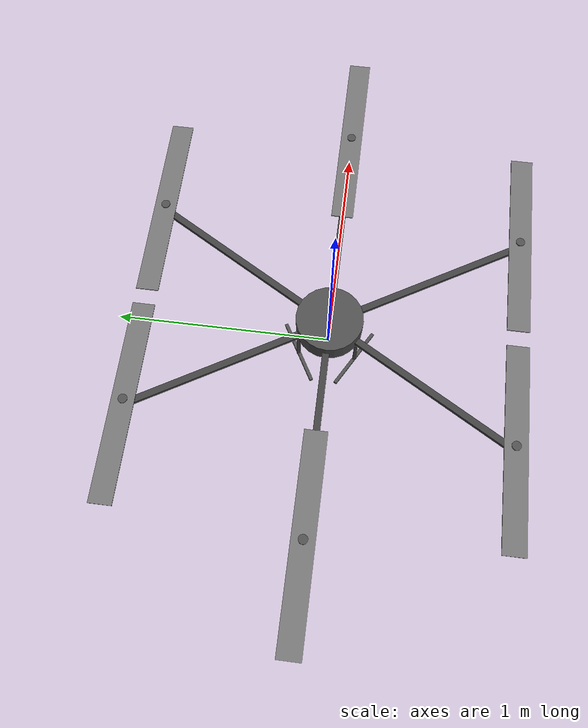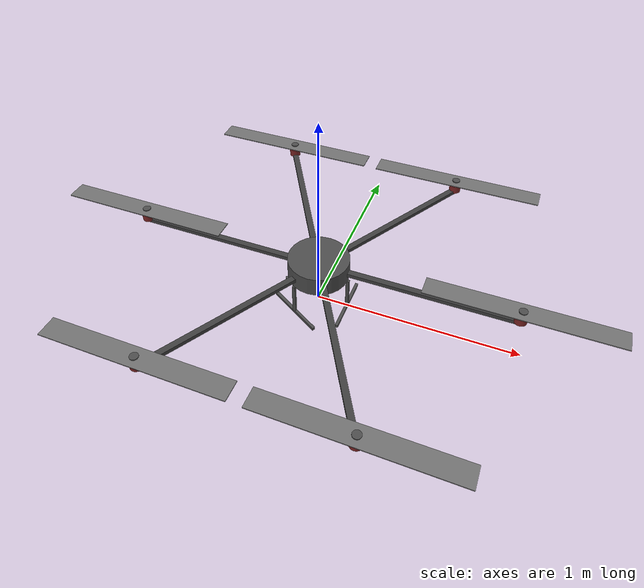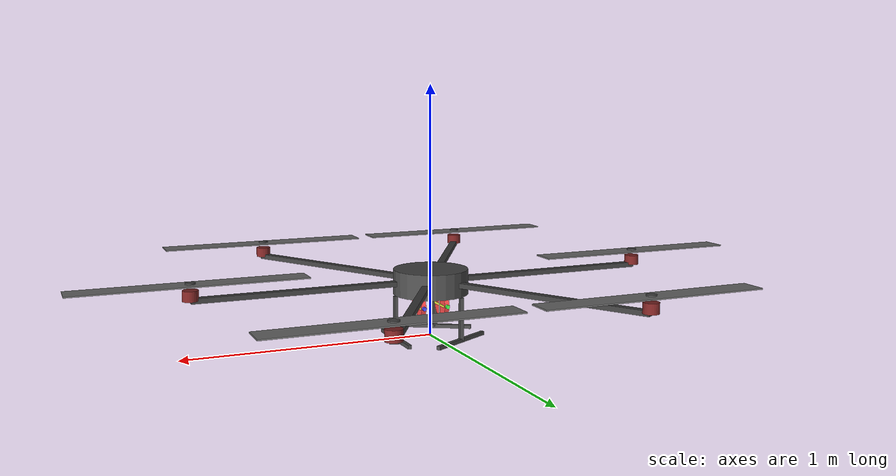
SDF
<?xml version="1.0" encoding="UTF-8"?>
<sdf version='1.9'>
  <model name='mars_hexacopter_base'>
    <pose>0 0 0.22 0 0 0</pose>
    <self_collide>false</self_collide>
    <static>false</static>

    <!-- base_link: hub + arms + motors + landing gear -->
    <link name="base_link">
      <inertial>
        <!-- 4.670 - 0.30 (2x CMG: 2×0.05 gimbal + 2×0.1 wheel) = 4.370 -->
        <mass>4.370</mass>
        <inertia>
          <ixx>0.39558</ixx>
          <ixy>0</ixy>
          <ixz>0</ixz>
          <iyy>0.39558</iyy>
          <iyz>0</iyz>
          <izz>0.78650</izz>
        </inertia>
      </inertial>
      <gravity>true</gravity>
      <velocity_decay/>

      <!-- Central hub (cylinder r=0.15, h=0.10) -->
      <visual name="hub_visual">
        <pose>0 0 0 0 0 0</pose>
        <geometry>
          <cylinder>
            <radius>0.15</radius>
            <length>0.10</length>
          </cylinder>
        </geometry>
        <material>
          <ambient>0.2 0.2 0.2 1</ambient>
          <diffuse>0.3 0.3 0.3 1</diffuse>
        </material>
      </visual>

      <!-- Arm 0: 0° -->
      <visual name="arm_0_visual">
        <pose>0.55 0 0 0 0 0</pose>
        <geometry>
          <box><size>0.80 0.03 0.02</size></box>
        </geometry>
        <material>
          <ambient>0.15 0.15 0.15 1</ambient>
          <diffuse>0.25 0.25 0.25 1</diffuse>
        </material>
      </visual>

      <!-- Arm 1: 60° -->
      <visual name="arm_1_visual">
        <pose>0.275 0.47631 0 0 0 1.0472</pose>
        <geometry>
          <box><size>0.80 0.03 0.02</size></box>
        </geometry>
        <material>
          <ambient>0.15 0.15 0.15 1</ambient>
          <diffuse>0.25 0.25 0.25 1</diffuse>
        </material>
      </visual>

      <!-- Arm 2: 120° -->
      <visual name="arm_2_visual">
        <pose>-0.275 0.47631 0 0 0 2.0944</pose>
        <geometry>
          <box><size>0.80 0.03 0.02</size></box>
        </geometry>
        <material>
          <ambient>0.15 0.15 0.15 1</ambient>
          <diffuse>0.25 0.25 0.25 1</diffuse>
        </material>
      </visual>

      <!-- Arm 3: 180° -->
      <visual name="arm_3_visual">
        <pose>-0.55 0 0 0 0 3.1416</pose>
        <geometry>
          <box><size>0.80 0.03 0.02</size></box>
        </geometry>
        <material>
          <ambient>0.15 0.15 0.15 1</ambient>
          <diffuse>0.25 0.25 0.25 1</diffuse>
        </material>
      </visual>

      <!-- Arm 4: 240° -->
      <visual name="arm_4_visual">
        <pose>-0.275 -0.47631 0 0 0 4.1888</pose>
        <geometry>
          <box><size>0.80 0.03 0.02</size></box>
        </geometry>
        <material>
          <ambient>0.15 0.15 0.15 1</ambient>
          <diffuse>0.25 0.25 0.25 1</diffuse>
        </material>
      </visual>

      <!-- Arm 5: 300° -->
      <visual name="arm_5_visual">
        <pose>0.275 -0.47631 0 0 0 5.2360</pose>
        <geometry>
          <box><size>0.80 0.03 0.02</size></box>
        </geometry>
        <material>
          <ambient>0.15 0.15 0.15 1</ambient>
          <diffuse>0.25 0.25 0.25 1</diffuse>
        </material>
      </visual>

      <!-- Motor pods (small cylinders at arm tips) -->
      <visual name="motor_pod_0">
        <pose>0.95 0 0.02 0 0 0</pose>
        <geometry><cylinder><radius>0.03</radius><length>0.04</length></cylinder></geometry>
        <material><ambient>0.3 0.1 0.1 1</ambient><diffuse>0.5 0.15 0.15 1</diffuse></material>
      </visual>
      <visual name="motor_pod_1">
        <pose>0.475 0.82272 0.02 0 0 0</pose>
        <geometry><cylinder><radius>0.03</radius><length>0.04</length></cylinder></geometry>
        <material><ambient>0.3 0.1 0.1 1</ambient><diffuse>0.5 0.15 0.15 1</diffuse></material>
      </visual>
      <visual name="motor_pod_2">
        <pose>-0.475 0.82272 0.02 0 0 0</pose>
        <geometry><cylinder><radius>0.03</radius><length>0.04</length></cylinder></geometry>
        <material><ambient>0.3 0.1 0.1 1</ambient><diffuse>0.5 0.15 0.15 1</diffuse></material>
      </visual>
      <visual name="motor_pod_3">
        <pose>-0.95 0 0.02 0 0 0</pose>
        <geometry><cylinder><radius>0.03</radius><length>0.04</length></cylinder></geometry>
        <material><ambient>0.3 0.1 0.1 1</ambient><diffuse>0.5 0.15 0.15 1</diffuse></material>
      </visual>
      <visual name="motor_pod_4">
        <pose>-0.475 -0.82272 0.02 0 0 0</pose>
        <geometry><cylinder><radius>0.03</radius><length>0.04</length></cylinder></geometry>
        <material><ambient>0.3 0.1 0.1 1</ambient><diffuse>0.5 0.15 0.15 1</diffuse></material>
      </visual>
      <visual name="motor_pod_5">
        <pose>0.475 -0.82272 0.02 0 0 0</pose>
        <geometry><cylinder><radius>0.03</radius><length>0.04</length></cylinder></geometry>
        <material><ambient>0.3 0.1 0.1 1</ambient><diffuse>0.5 0.15 0.15 1</diffuse></material>
      </visual>

      <!-- Landing gear: 3 legs at 0°, 120°, 240° (120° symmetric) -->
      <!-- Leg 0: 0° (x+ direction) -->
      <visual name="leg_0_visual">
        <pose>0.15 0 -0.135 0 0 0</pose>
        <geometry><box><size>0.015 0.015 0.17</size></box></geometry>
        <material><ambient>0.2 0.2 0.2 1</ambient><diffuse>0.3 0.3 0.3 1</diffuse></material>
      </visual>
      <!-- Leg 1: 120° -->
      <visual name="leg_1_visual">
        <pose>-0.075 0.130 -0.135 0 0 0</pose>
        <geometry><box><size>0.015 0.015 0.17</size></box></geometry>
        <material><ambient>0.2 0.2 0.2 1</ambient><diffuse>0.3 0.3 0.3 1</diffuse></material>
      </visual>
      <!-- Leg 2: 240° -->
      <visual name="leg_2_visual">
        <pose>-0.075 -0.130 -0.135 0 0 0</pose>
        <geometry><box><size>0.015 0.015 0.17</size></box></geometry>
        <material><ambient>0.2 0.2 0.2 1</ambient><diffuse>0.3 0.3 0.3 1</diffuse></material>
      </visual>
      <!-- Landing gear feet: 3 bars perpendicular to radial, all same size -->
      <visual name="foot_0">
        <pose>0.15 0 -0.22 0 0 1.5708</pose>
        <geometry><box><size>0.30 0.015 0.015</size></box></geometry>
        <material><ambient>0.2 0.2 0.2 1</ambient><diffuse>0.3 0.3 0.3 1</diffuse></material>
      </visual>
      <visual name="foot_1">
        <pose>-0.075 0.130 -0.22 0 0 0.5236</pose>
        <geometry><box><size>0.30 0.015 0.015</size></box></geometry>
        <material><ambient>0.2 0.2 0.2 1</ambient><diffuse>0.3 0.3 0.3 1</diffuse></material>
      </visual>
      <visual name="foot_2">
        <pose>-0.075 -0.130 -0.22 0 0 -0.5236</pose>
        <geometry><box><size>0.30 0.015 0.015</size></box></geometry>
        <material><ambient>0.2 0.2 0.2 1</ambient><diffuse>0.3 0.3 0.3 1</diffuse></material>
      </visual>

      <!-- Collision: central hub -->
      <collision name="hub_collision">
        <pose>0 0 0 0 0 0</pose>
        <geometry>
          <cylinder>
            <radius>0.15</radius>
            <length>0.10</length>
          </cylinder>
        </geometry>
        <surface>
          <contact><ode><min_depth>0.001</min_depth><max_vel>0</max_vel></ode></contact>
          <friction><ode/></friction>
        </surface>
      </collision>
      <!-- Collision: landing gear feet (3× symmetric, thicker for reliable ground contact) -->
      <collision name="foot_0_collision">
        <pose>0.15 0 -0.20 0 0 1.5708</pose>
        <geometry><box><size>0.30 0.04 0.06</size></box></geometry>
        <surface>
          <contact><ode><min_depth>0.002</min_depth><max_vel>0</max_vel></ode></contact>
          <friction><ode><mu>1.0</mu><mu2>1.0</mu2></ode></friction>
        </surface>
      </collision>
      <collision name="foot_1_collision">
        <pose>-0.075 0.130 -0.20 0 0 0.5236</pose>
        <geometry><box><size>0.30 0.04 0.06</size></box></geometry>
        <surface>
          <contact><ode><min_depth>0.002</min_depth><max_vel>0</max_vel></ode></contact>
          <friction><ode><mu>1.0</mu><mu2>1.0</mu2></ode></friction>
        </surface>
      </collision>
      <collision name="foot_2_collision">
        <pose>-0.075 -0.130 -0.20 0 0 -0.5236</pose>
        <geometry><box><size>0.30 0.04 0.06</size></box></geometry>
        <surface>
          <contact><ode><min_depth>0.002</min_depth><max_vel>0</max_vel></ode></contact>
          <friction><ode><mu>1.0</mu><mu2>1.0</mu2></ode></friction>
        </surface>
      </collision>

      <!-- Sensors (same pattern as x500_base) -->
      <sensor name="imu_sensor" type="imu">
        <gz_frame_id>base_link</gz_frame_id>
        <always_on>1</always_on>
        <update_rate>250</update_rate>
        <imu>
          <angular_velocity>
            <x><noise type="gaussian"><mean>0.0</mean><stddev>0.0008726646</stddev></noise></x>
            <y><noise type="gaussian"><mean>0.0</mean><stddev>0.0008726646</stddev></noise></y>
            <z><noise type="gaussian"><mean>0.0</mean><stddev>0.0008726646</stddev></noise></z>
          </angular_velocity>
          <linear_acceleration>
            <x><noise type="gaussian"><mean>0.0</mean><stddev>0.00637</stddev></noise></x>
            <y><noise type="gaussian"><mean>0.0</mean><stddev>0.00637</stddev></noise></y>
            <z><noise type="gaussian"><mean>0.0</mean><stddev>0.00686</stddev></noise></z>
          </linear_acceleration>
        </imu>
      </sensor>
      <sensor name="air_pressure_sensor" type="air_pressure">
        <gz_frame_id>base_link</gz_frame_id>
        <always_on>1</always_on>
        <update_rate>50</update_rate>
        <air_pressure>
          <pressure><noise type="gaussian"><mean>0</mean><stddev>3</stddev></noise></pressure>
        </air_pressure>
      </sensor>
      <sensor name="navsat_sensor" type="navsat">
        <gz_frame_id>base_link</gz_frame_id>
        <always_on>1</always_on>
        <update_rate>30</update_rate>
      </sensor>
    </link>

    <!-- Rotor 0: 0° (CCW) -->
    <link name="rotor_0">
      <gravity>true</gravity>
      <self_collide>false</self_collide>
      <velocity_decay/>
      <pose>0.95 0 0.06 0 0 0</pose>
      <inertial>
        <mass>0.055</mass>
        <inertia>
          <ixx>1.0e-05</ixx>
          <iyy>3.549333e-03</iyy>
          <izz>3.549333e-03</izz>
        </inertia>
      </inertial>
      <!-- 2-blade propeller (span=0.88m, chord=0.10m, t=0.005m) -->
      <visual name="rotor_0_blade">
        <geometry>
          <box><size>0.88 0.10 0.005</size></box>
        </geometry>
        <material>
          <ambient>0.3 0.3 0.3 0.9</ambient>
          <diffuse>0.45 0.45 0.45 0.9</diffuse>
        </material>
      </visual>
      <visual name="rotor_0_hub">
        <geometry>
          <cylinder><radius>0.02</radius><length>0.015</length></cylinder>
        </geometry>
        <material>
          <ambient>0.2 0.2 0.2 1</ambient>
          <diffuse>0.3 0.3 0.3 1</diffuse>
        </material>
      </visual>
    </link>
    <joint name="rotor_0_joint" type="revolute">
      <parent>base_link</parent>
      <child>rotor_0</child>
      <axis>
        <xyz>0 0 1</xyz>
        <limit><lower>-1e+16</lower><upper>1e+16</upper></limit>
        <dynamics><spring_reference>0</spring_reference><spring_stiffness>0</spring_stiffness></dynamics>
      </axis>
    </joint>

    <!-- Rotor 1: 60° (CW) -->
    <link name="rotor_1">
      <gravity>true</gravity>
      <self_collide>false</self_collide>
      <velocity_decay/>
      <pose>0.475 0.82272 0.06 0 0 0</pose>
      <inertial>
        <mass>0.055</mass>
        <inertia>
          <ixx>1.0e-05</ixx>
          <iyy>3.549333e-03</iyy>
          <izz>3.549333e-03</izz>
        </inertia>
      </inertial>
      <visual name="rotor_1_blade">
        <geometry>
          <box><size>0.88 0.10 0.005</size></box>
        </geometry>
        <material>
          <ambient>0.3 0.3 0.3 0.9</ambient>
          <diffuse>0.45 0.45 0.45 0.9</diffuse>
        </material>
      </visual>
      <visual name="rotor_1_hub">
        <geometry>
          <cylinder><radius>0.02</radius><length>0.015</length></cylinder>
        </geometry>
        <material>
          <ambient>0.2 0.2 0.2 1</ambient>
          <diffuse>0.3 0.3 0.3 1</diffuse>
        </material>
      </visual>
    </link>
    <joint name="rotor_1_joint" type="revolute">
      <parent>base_link</parent>
      <child>rotor_1</child>
      <axis>
        <xyz>0 0 1</xyz>
        <limit><lower>-1e+16</lower><upper>1e+16</upper></limit>
        <dynamics><spring_reference>0</spring_reference><spring_stiffness>0</spring_stiffness></dynamics>
      </axis>
    </joint>

    <!-- Rotor 2: 120° (CCW) -->
    <link name="rotor_2">
      <gravity>true</gravity>
      <self_collide>false</self_collide>
      <velocity_decay/>
      <pose>-0.475 0.82272 0.06 0 0 0</pose>
      <inertial>
        <mass>0.055</mass>
        <inertia>
          <ixx>1.0e-05</ixx>
          <iyy>3.549333e-03</iyy>
          <izz>3.549333e-03</izz>
        </inertia>
      </inertial>
      <visual name="rotor_2_blade">
        <geometry>
          <box><size>0.88 0.10 0.005</size></box>
        </geometry>
        <material>
          <ambient>0.3 0.3 0.3 0.9</ambient>
          <diffuse>0.45 0.45 0.45 0.9</diffuse>
        </material>
      </visual>
      <visual name="rotor_2_hub">
        <geometry>
          <cylinder><radius>0.02</radius><length>0.015</length></cylinder>
        </geometry>
        <material>
          <ambient>0.2 0.2 0.2 1</ambient>
          <diffuse>0.3 0.3 0.3 1</diffuse>
        </material>
      </visual>
    </link>
    <joint name="rotor_2_joint" type="revolute">
      <parent>base_link</parent>
      <child>rotor_2</child>
      <axis>
        <xyz>0 0 1</xyz>
        <limit><lower>-1e+16</lower><upper>1e+16</upper></limit>
        <dynamics><spring_reference>0</spring_reference><spring_stiffness>0</spring_stiffness></dynamics>
      </axis>
    </joint>

    <!-- Rotor 3: 180° (CW) -->
    <link name="rotor_3">
      <gravity>true</gravity>
      <self_collide>false</self_collide>
      <velocity_decay/>
      <pose>-0.95 0 0.06 0 0 0</pose>
      <inertial>
        <mass>0.055</mass>
        <inertia>
          <ixx>1.0e-05</ixx>
          <iyy>3.549333e-03</iyy>
          <izz>3.549333e-03</izz>
        </inertia>
      </inertial>
      <visual name="rotor_3_blade">
        <geometry>
          <box><size>0.88 0.10 0.005</size></box>
        </geometry>
        <material>
          <ambient>0.3 0.3 0.3 0.9</ambient>
          <diffuse>0.45 0.45 0.45 0.9</diffuse>
        </material>
      </visual>
      <visual name="rotor_3_hub">
        <geometry>
          <cylinder><radius>0.02</radius><length>0.015</length></cylinder>
        </geometry>
        <material>
          <ambient>0.2 0.2 0.2 1</ambient>
          <diffuse>0.3 0.3 0.3 1</diffuse>
        </material>
      </visual>
    </link>
    <joint name="rotor_3_joint" type="revolute">
      <parent>base_link</parent>
      <child>rotor_3</child>
      <axis>
        <xyz>0 0 1</xyz>
        <limit><lower>-1e+16</lower><upper>1e+16</upper></limit>
        <dynamics><spring_reference>0</spring_reference><spring_stiffness>0</spring_stiffness></dynamics>
      </axis>
    </joint>

    <!-- Rotor 4: 240° (CCW) -->
    <link name="rotor_4">
      <gravity>true</gravity>
      <self_collide>false</self_collide>
      <velocity_decay/>
      <pose>-0.475 -0.82272 0.06 0 0 0</pose>
      <inertial>
        <mass>0.055</mass>
        <inertia>
          <ixx>1.0e-05</ixx>
          <iyy>3.549333e-03</iyy>
          <izz>3.549333e-03</izz>
        </inertia>
      </inertial>
      <visual name="rotor_4_blade">
        <geometry>
          <box><size>0.88 0.10 0.005</size></box>
        </geometry>
        <material>
          <ambient>0.3 0.3 0.3 0.9</ambient>
          <diffuse>0.45 0.45 0.45 0.9</diffuse>
        </material>
      </visual>
      <visual name="rotor_4_hub">
        <geometry>
          <cylinder><radius>0.02</radius><length>0.015</length></cylinder>
        </geometry>
        <material>
          <ambient>0.2 0.2 0.2 1</ambient>
          <diffuse>0.3 0.3 0.3 1</diffuse>
        </material>
      </visual>
    </link>
    <joint name="rotor_4_joint" type="revolute">
      <parent>base_link</parent>
      <child>rotor_4</child>
      <axis>
        <xyz>0 0 1</xyz>
        <limit><lower>-1e+16</lower><upper>1e+16</upper></limit>
        <dynamics><spring_reference>0</spring_reference><spring_stiffness>0</spring_stiffness></dynamics>
      </axis>
    </joint>

    <!-- Rotor 5: 300° (CW) -->
    <link name="rotor_5">
      <gravity>true</gravity>
      <self_collide>false</self_collide>
      <velocity_decay/>
      <pose>0.475 -0.82272 0.06 0 0 0</pose>
      <inertial>
        <mass>0.055</mass>
        <inertia>
          <ixx>1.0e-05</ixx>
          <iyy>3.549333e-03</iyy>
          <izz>3.549333e-03</izz>
        </inertia>
      </inertial>
      <visual name="rotor_5_blade">
        <geometry>
          <box><size>0.88 0.10 0.005</size></box>
        </geometry>
        <material>
          <ambient>0.3 0.3 0.3 0.9</ambient>
          <diffuse>0.45 0.45 0.45 0.9</diffuse>
        </material>
      </visual>
      <visual name="rotor_5_hub">
        <geometry>
          <cylinder><radius>0.02</radius><length>0.015</length></cylinder>
        </geometry>
        <material>
          <ambient>0.2 0.2 0.2 1</ambient>
          <diffuse>0.3 0.3 0.3 1</diffuse>
        </material>
      </visual>
    </link>
    <joint name="rotor_5_joint" type="revolute">
      <parent>base_link</parent>
      <child>rotor_5</child>
      <axis>
        <xyz>0 0 1</xyz>
        <limit><lower>-1e+16</lower><upper>1e+16</upper></limit>
        <dynamics><spring_reference>0</spring_reference><spring_stiffness>0</spring_stiffness></dynamics>
      </axis>
    </joint>

    <!-- CMG 1: +X side (same as cubesat_cmg) -->
    <!-- MATLAB: pos=[0.05;0;0], a=[0;1;0], s0=[1;0;0] -->
    <link name="cmg1_gimbal">
      <pose relative_to="base_link">0.05 0 -0.10 0 0 0</pose>
      <inertial>
        <mass>0.05</mass>
        <inertia>
          <ixx>1e-6</ixx> <iyy>1e-6</iyy> <izz>1e-6</izz>
          <ixy>0</ixy> <ixz>0</ixz> <iyz>0</iyz>
        </inertia>
      </inertial>
      <!-- Gimbal shaft (visual scaled for hexacopter, inertia unchanged) -->
      <visual name="cmg1_gimbal_visual">
        <pose>0 0 0 1.5708 0 0</pose>
        <geometry><cylinder><radius>0.008</radius><length>0.12</length></cylinder></geometry>
        <material>
          <ambient>0.2 0.2 0.9 1</ambient>
          <diffuse>0.3 0.3 1.0 1</diffuse>
        </material>
      </visual>
    </link>

    <link name="cmg1_wheel">
      <pose relative_to="cmg1_gimbal">0 0 0 0 0 0</pose>
      <inertial>
        <mass>0.1</mass>
        <inertia>
          <ixx>3.65e-5</ixx> <iyy>2e-5</iyy> <izz>2e-5</izz>
          <ixy>0</ixy> <ixz>0</ixz> <iyz>0</iyz>
        </inertia>
      </inertial>
      <!-- Wheel disk (visual scaled for hexacopter) -->
      <visual name="cmg1_wheel_visual">
        <pose>0 0 0 0 1.5708 0</pose>
        <geometry><cylinder><radius>0.05</radius><length>0.02</length></cylinder></geometry>
        <material>
          <ambient>0.9 0.2 0.2 1</ambient>
          <diffuse>1.0 0.3 0.3 1</diffuse>
        </material>
      </visual>
      <visual name="cmg1_stripe_y">
        <geometry><box><size>0.025 0.095 0.008</size></box></geometry>
        <material><ambient>1.0 1.0 0.2 1</ambient><diffuse>1.0 1.0 0.3 1</diffuse></material>
      </visual>
      <visual name="cmg1_stripe_z">
        <geometry><box><size>0.025 0.008 0.095</size></box></geometry>
        <material><ambient>1.0 1.0 1.0 1</ambient><diffuse>1.0 1.0 1.0 1</diffuse></material>
      </visual>
    </link>

    <!-- CMG 2: -X side -->
    <!-- MATLAB: pos=[-0.05;0;0], a=[0;1;0], s0=[1;0;0] -->
    <link name="cmg2_gimbal">
      <pose relative_to="base_link">-0.05 0 -0.10 0 0 0</pose>
      <inertial>
        <mass>0.05</mass>
        <inertia>
          <ixx>1e-6</ixx> <iyy>1e-6</iyy> <izz>1e-6</izz>
          <ixy>0</ixy> <ixz>0</ixz> <iyz>0</iyz>
        </inertia>
      </inertial>
      <!-- Gimbal shaft (visual scaled for hexacopter, inertia unchanged) -->
      <visual name="cmg2_gimbal_visual">
        <pose>0 0 0 1.5708 0 0</pose>
        <geometry><cylinder><radius>0.008</radius><length>0.12</length></cylinder></geometry>
        <material>
          <ambient>0.2 0.9 0.2 1</ambient>
          <diffuse>0.3 1.0 0.3 1</diffuse>
        </material>
      </visual>
    </link>

    <link name="cmg2_wheel">
      <pose relative_to="cmg2_gimbal">0 0 0 0 0 0</pose>
      <inertial>
        <mass>0.1</mass>
        <inertia>
          <ixx>3.65e-5</ixx> <iyy>2e-5</iyy> <izz>2e-5</izz>
          <ixy>0</ixy> <ixz>0</ixz> <iyz>0</iyz>
        </inertia>
      </inertial>
      <!-- Wheel disk (visual scaled for hexacopter) -->
      <visual name="cmg2_wheel_visual">
        <pose>0 0 0 0 1.5708 0</pose>
        <geometry><cylinder><radius>0.05</radius><length>0.02</length></cylinder></geometry>
        <material>
          <ambient>0.9 0.2 0.2 1</ambient>
          <diffuse>1.0 0.3 0.3 1</diffuse>
        </material>
      </visual>
      <visual name="cmg2_stripe_y">
        <geometry><box><size>0.025 0.095 0.008</size></box></geometry>
        <material><ambient>1.0 1.0 0.2 1</ambient><diffuse>1.0 1.0 0.3 1</diffuse></material>
      </visual>
      <visual name="cmg2_stripe_z">
        <geometry><box><size>0.025 0.008 0.095</size></box></geometry>
        <material><ambient>1.0 1.0 1.0 1</ambient><diffuse>1.0 1.0 1.0 1</diffuse></material>
      </visual>
    </link>

    <!-- CMG Joints -->
    <joint name="cmg1_gimbal_joint" type="revolute">
      <parent>base_link</parent>
      <child>cmg1_gimbal</child>
      <axis>
        <xyz>0 1 0</xyz>
        <limit>
          <lower>-1e16</lower> <upper>1e16</upper>
          <effort>10</effort> <velocity>2.0</velocity>
        </limit>
        <dynamics><damping>0.0</damping><friction>0.0</friction></dynamics>
      </axis>
    </joint>

    <joint name="cmg1_wheel_joint" type="revolute">
      <parent>cmg1_gimbal</parent>
      <child>cmg1_wheel</child>
      <axis>
        <xyz>1 0 0</xyz>
        <limit>
          <lower>-1e16</lower> <upper>1e16</upper>
          <effort>1</effort> <velocity>2100</velocity>
        </limit>
        <dynamics><damping>0.0</damping><friction>0.0</friction></dynamics>
      </axis>
    </joint>

    <joint name="cmg2_gimbal_joint" type="revolute">
      <parent>base_link</parent>
      <child>cmg2_gimbal</child>
      <axis>
        <xyz>0 1 0</xyz>
        <limit>
          <lower>-1e16</lower> <upper>1e16</upper>
          <effort>10</effort> <velocity>2.0</velocity>
        </limit>
        <dynamics><damping>0.0</damping><friction>0.0</friction></dynamics>
      </axis>
    </joint>

    <joint name="cmg2_wheel_joint" type="revolute">
      <parent>cmg2_gimbal</parent>
      <child>cmg2_wheel</child>
      <axis>
        <xyz>1 0 0</xyz>
        <limit>
          <lower>-1e16</lower> <upper>1e16</upper>
          <effort>1</effort> <velocity>2100</velocity>
        </limit>
        <dynamics><damping>0.0</damping><friction>0.0</friction></dynamics>
      </axis>
    </joint>

  </model>
</sdf>
